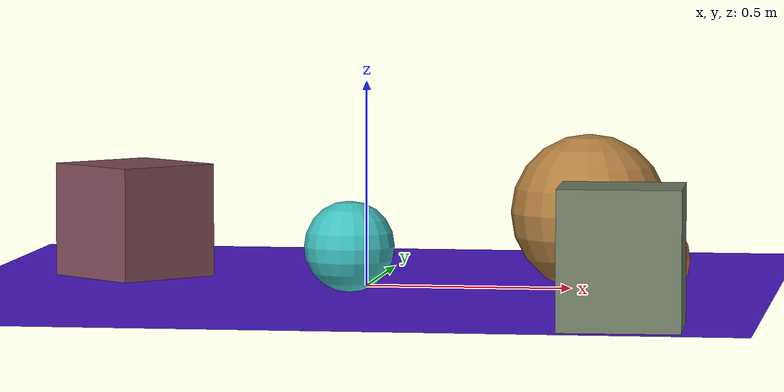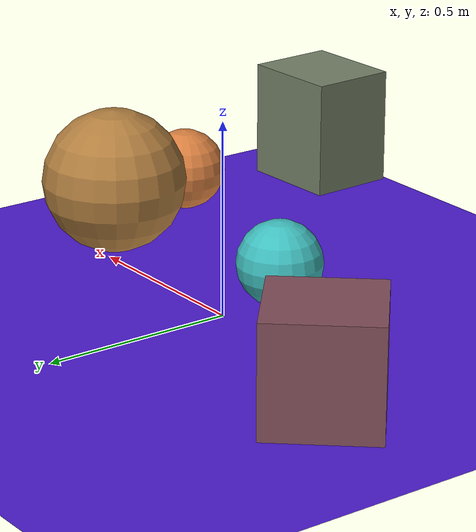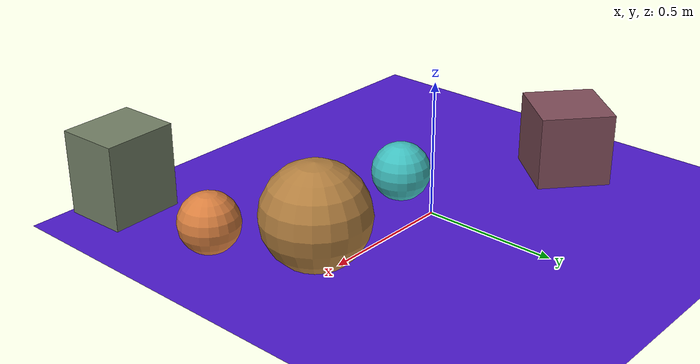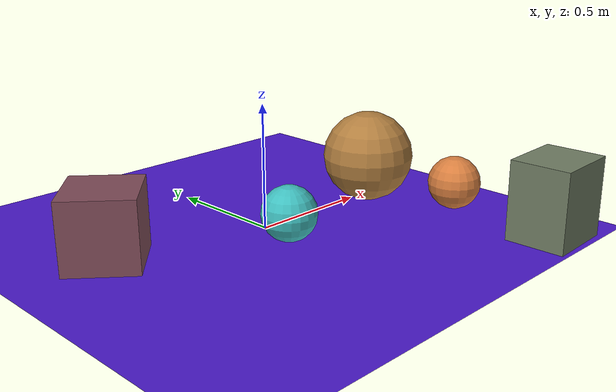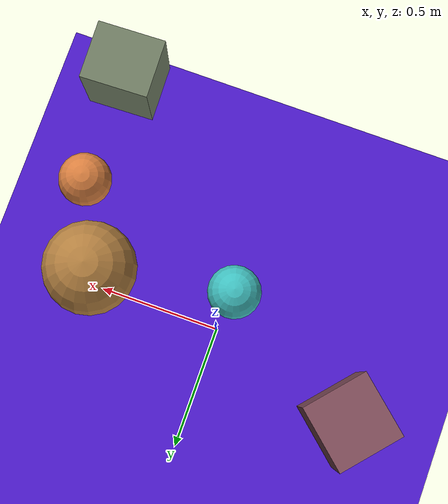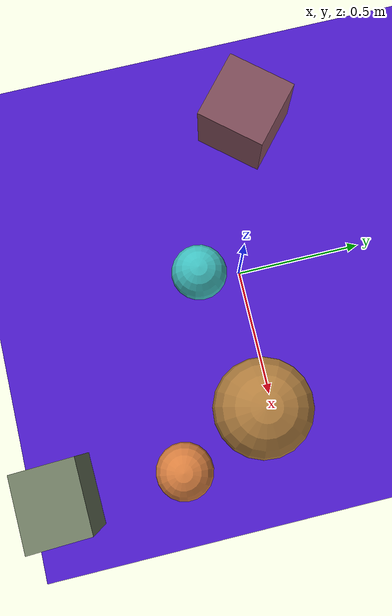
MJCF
<mujoco>
   <asset>
<texture type="skybox" builtin="gradient" rgb1="0.1 0.1 0.1" rgb2="0.6 1.0 0.6" width="256" height="256"/>
<texture name="checker_0" builtin="checker" rgb1="0.9 0.7 0.4" rgb2="0.8 0.3 0.1" width="200" height="200"/>
<texture name="checker_1" builtin="checker" rgb1="0.5 0.5 0.4" rgb2="0.4 0.5 0.4" width="200" height="200"/>
<texture name="gradient_2" builtin="gradient" rgb1="0.4 0.4 0.0" rgb2="0.6 0.2 0.7" width="200" height="200"/>
<texture name="checker_3" builtin="checker" rgb1="0.4 0.5 0.7" rgb2="0.1 1.0 0.8" width="200" height="200"/>
<texture name="gradient_4" builtin="gradient" rgb1="0.7 0.5 0.2" rgb2="0.7 0.5 0.3" width="200" height="200"/><material name="checker_0_mat" reflectance="0" texrepeat="2 2" texture="checker_0" texuniform="false" />
<material name="checker_1_mat" reflectance="0" texrepeat="5 5" texture="checker_1" texuniform="false" />
<material name="gradient_2_mat" reflectance="0" texture="gradient_2" texuniform="true"/>
<material name="checker_3_mat" reflectance="0" texrepeat="8 8" texture="checker_3" texuniform="false" />
<material name="gradient_4_mat" reflectance="0" texture="gradient_4" texuniform="true"/>
   </asset>

   <worldbody>
      <light diffuse=".9 .9 .9" pos="0 0 3" dir="0 0 -1"/>
     <geom type="plane" size="1 1 0.1" rgba="0.3 0.1 0.8 1"/>
<geom type="sphere" pos="0.71 -0.39 0.11" size="0.11 0.11 0.11" material="checker_0_mat" euler="0 0 12" />
<geom type="box" pos="0.7 -0.86 0.16" size="0.14 0.12 0.16" material="checker_1_mat" euler="0 0 2" />
<geom type="box" pos="-0.61 0.17 0.14" size="0.14 0.14 0.14" material="gradient_2_mat" euler="0 0 49" />
<geom type="sphere" pos="-0.02 -0.16 0.11" size="0.11 0.11 0.11" material="checker_3_mat" euler="0 0 51" />
<geom type="sphere" pos="0.55 -0.05 0.19" size="0.19 0.19 0.19" material="gradient_4_mat" euler="0 0 76" /><camera euler="60 0 180" fovy="60" name="camera1" pos="-0.2 -1.5 1"></camera>   </worldbody>
</mujoco>
